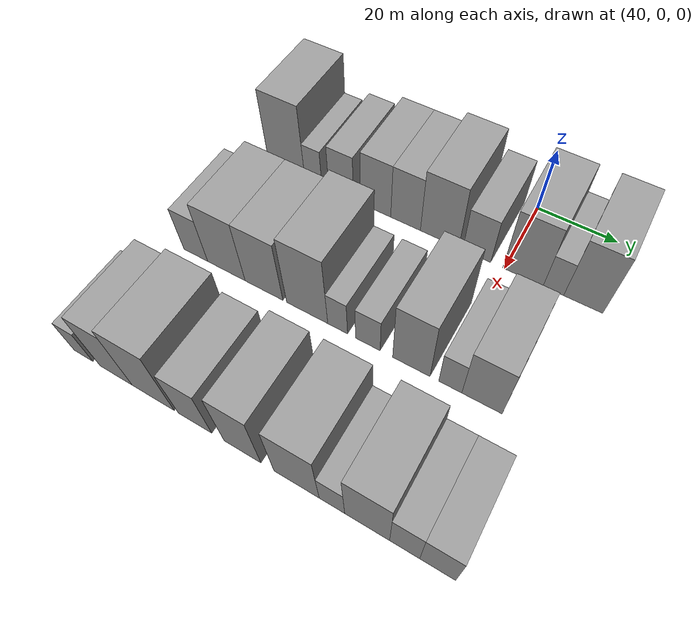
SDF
<sdf version="1.6">
 <world name="default">
  <model name="building_28">
   <static>1</static>
   <pose>50.0000 -59.4083 0 0.000000 0.000000 0.000000</pose>
   <link name="link">
    <pose>0 0 12.00 0 0 0</pose>
    <collision name="collision"><geometry><box><size>20.0000 10.8546 24.0000</size></box></geometry></collision>
    <visual name="visual">
     <cast_shadows>0</cast_shadows>
     <geometry><box><size>20.0000 10.8546 24.0000</size></box></geometry>
     <material>
      <script>
       <uri>model://grey_wall/materials/scripts</uri>
       <uri>model://grey_wall/materials/textures</uri>
       <name>vrc/grey_wall</name>
      </script>
     </material>
    </visual>
   </link>
  </model>
  <model name="building_29">
   <static>1</static>
   <pose>50.0000 -51.4689 0 0.000000 0.000000 0.000000</pose>
   <link name="link">
    <pose>0 0 6.00 0 0 0</pose>
    <collision name="collision"><geometry><box><size>20.0000 5.0243 12.0000</size></box></geometry></collision>
    <visual name="visual">
     <cast_shadows>0</cast_shadows>
     <geometry><box><size>20.0000 5.0243 12.0000</size></box></geometry>
     <material>
      <script>
       <uri>model://grey_wall/materials/scripts</uri>
       <uri>model://grey_wall/materials/textures</uri>
       <name>vrc/grey_wall</name>
      </script>
     </material>
    </visual>
   </link>
  </model>
  <model name="building_30">
   <static>1</static>
   <pose>50.0000 -43.4374 0 0.000000 0.000000 0.000000</pose>
   <link name="link">
    <pose>0 0 7.50 0 0 0</pose>
    <collision name="collision"><geometry><box><size>20.0000 7.0387 15.0000</size></box></geometry></collision>
    <visual name="visual">
     <cast_shadows>0</cast_shadows>
     <geometry><box><size>20.0000 7.0387 15.0000</size></box></geometry>
     <material>
      <script>
       <uri>model://grey_wall/materials/scripts</uri>
       <uri>model://grey_wall/materials/textures</uri>
       <name>vrc/grey_wall</name>
      </script>
     </material>
    </visual>
   </link>
  </model>
  <model name="building_31">
   <static>1</static>
   <pose>50.0000 -33.7445 0 0.000000 0.000000 0.000000</pose>
   <link name="link">
    <pose>0 0 9.00 0 0 0</pose>
    <collision name="collision"><geometry><box><size>20.0000 8.3470 18.0000</size></box></geometry></collision>
    <visual name="visual">
     <cast_shadows>0</cast_shadows>
     <geometry><box><size>20.0000 8.3470 18.0000</size></box></geometry>
     <material>
      <script>
       <uri>model://grey_wall/materials/scripts</uri>
       <uri>model://grey_wall/materials/textures</uri>
       <name>vrc/grey_wall</name>
      </script>
     </material>
    </visual>
   </link>
  </model>
  <model name="building_32">
   <static>1</static>
   <pose>50.0000 -25.5704 0 0.000000 0.000000 0.000000</pose>
   <link name="link">
    <pose>0 0 9.00 0 0 0</pose>
    <collision name="collision"><geometry><box><size>20.0000 8.0010 18.0000</size></box></geometry></collision>
    <visual name="visual">
     <cast_shadows>0</cast_shadows>
     <geometry><box><size>20.0000 8.0010 18.0000</size></box></geometry>
     <material>
      <script>
       <uri>model://grey_wall/materials/scripts</uri>
       <uri>model://grey_wall/materials/textures</uri>
       <name>vrc/grey_wall</name>
      </script>
     </material>
    </visual>
   </link>
  </model>
  <model name="building_33">
   <static>1</static>
   <pose>50.0000 -16.5483 0 0.000000 0.000000 0.000000</pose>
   <link name="link">
    <pose>0 0 10.50 0 0 0</pose>
    <collision name="collision"><geometry><box><size>20.0000 10.0432 21.0000</size></box></geometry></collision>
    <visual name="visual">
     <cast_shadows>0</cast_shadows>
     <geometry><box><size>20.0000 10.0432 21.0000</size></box></geometry>
     <material>
      <script>
       <uri>model://grey_wall/materials/scripts</uri>
       <uri>model://grey_wall/materials/textures</uri>
       <name>vrc/grey_wall</name>
      </script>
     </material>
    </visual>
   </link>
  </model>
  <model name="building_34">
   <static>1</static>
   <pose>50.0000 -6.9915 0 0.000000 0.000000 0.000000</pose>
   <link name="link">
    <pose>0 0 7.50 0 0 0</pose>
    <collision name="collision"><geometry><box><size>20.0000 7.0704 15.0000</size></box></geometry></collision>
    <visual name="visual">
     <cast_shadows>0</cast_shadows>
     <geometry><box><size>20.0000 7.0704 15.0000</size></box></geometry>
     <material>
      <script>
       <uri>model://grey_wall/materials/scripts</uri>
       <uri>model://grey_wall/materials/textures</uri>
       <name>vrc/grey_wall</name>
      </script>
     </material>
    </visual>
   </link>
  </model>
  <model name="building_35">
   <static>1</static>
   <pose>50.0000 4.4406 0 0.000000 0.000000 0.000000</pose>
   <link name="link">
    <pose>0 0 10.50 0 0 0</pose>
    <collision name="collision"><geometry><box><size>20.0000 9.7938 21.0000</size></box></geometry></collision>
    <visual name="visual">
     <cast_shadows>0</cast_shadows>
     <geometry><box><size>20.0000 9.7938 21.0000</size></box></geometry>
     <material>
      <script>
       <uri>model://grey_wall/materials/scripts</uri>
       <uri>model://grey_wall/materials/textures</uri>
       <name>vrc/grey_wall</name>
      </script>
     </material>
    </visual>
   </link>
  </model>
  <model name="building_36">
   <static>1</static>
   <pose>50.0000 11.7586 0 0.000000 0.000000 0.000000</pose>
   <link name="link">
    <pose>0 0 6.00 0 0 0</pose>
    <collision name="collision"><geometry><box><size>20.0000 4.8423 12.0000</size></box></geometry></collision>
    <visual name="visual">
     <cast_shadows>0</cast_shadows>
     <geometry><box><size>20.0000 4.8423 12.0000</size></box></geometry>
     <material>
      <script>
       <uri>model://grey_wall/materials/scripts</uri>
       <uri>model://grey_wall/materials/textures</uri>
       <name>vrc/grey_wall</name>
      </script>
     </material>
    </visual>
   </link>
  </model>
  <model name="building_37">
   <static>1</static>
   <pose>50.0000 18.6964 0 0.000000 0.000000 0.000000</pose>
   <link name="link">
    <pose>0 0 10.50 0 0 0</pose>
    <collision name="collision"><geometry><box><size>20.0000 9.0333 21.0000</size></box></geometry></collision>
    <visual name="visual">
     <cast_shadows>0</cast_shadows>
     <geometry><box><size>20.0000 9.0333 21.0000</size></box></geometry>
     <material>
      <script>
       <uri>model://grey_wall/materials/scripts</uri>
       <uri>model://grey_wall/materials/textures</uri>
       <name>vrc/grey_wall</name>
      </script>
     </material>
    </visual>
   </link>
  </model>
  <model name="building_98">
   <static>1</static>
   <pose>82.0000 -63.2266 0 0.000000 0.000000 0.000000</pose>
   <link name="link">
    <pose>0 0 7.50 0 0 0</pose>
    <collision name="collision"><geometry><box><size>20.0000 6.8529 15.0000</size></box></geometry></collision>
    <visual name="visual">
     <cast_shadows>0</cast_shadows>
     <geometry><box><size>20.0000 6.8529 15.0000</size></box></geometry>
     <material>
      <script>
       <uri>model://grey_wall/materials/scripts</uri>
       <uri>model://grey_wall/materials/textures</uri>
       <name>vrc/grey_wall</name>
      </script>
     </material>
    </visual>
   </link>
  </model>
  <model name="building_99">
   <static>1</static>
   <pose>82.0000 -54.5525 0 0.000000 0.000000 0.000000</pose>
   <link name="link">
    <pose>0 0 10.50 0 0 0</pose>
    <collision name="collision"><geometry><box><size>20.0000 10.4952 21.0000</size></box></geometry></collision>
    <visual name="visual">
     <cast_shadows>0</cast_shadows>
     <geometry><box><size>20.0000 10.4952 21.0000</size></box></geometry>
     <material>
      <script>
       <uri>model://grey_wall/materials/scripts</uri>
       <uri>model://grey_wall/materials/textures</uri>
       <name>vrc/grey_wall</name>
      </script>
     </material>
    </visual>
   </link>
  </model>
  <model name="building_100">
   <static>1</static>
   <pose>82.0000 -44.2091 0 0.000000 0.000000 0.000000</pose>
   <link name="link">
    <pose>0 0 10.50 0 0 0</pose>
    <collision name="collision"><geometry><box><size>20.0000 10.1915 21.0000</size></box></geometry></collision>
    <visual name="visual">
     <cast_shadows>0</cast_shadows>
     <geometry><box><size>20.0000 10.1915 21.0000</size></box></geometry>
     <material>
      <script>
       <uri>model://grey_wall/materials/scripts</uri>
       <uri>model://grey_wall/materials/textures</uri>
       <name>vrc/grey_wall</name>
      </script>
     </material>
    </visual>
   </link>
  </model>
  <model name="building_101">
   <static>1</static>
   <pose>82.0000 -32.7987 0 0.000000 0.000000 0.000000</pose>
   <link name="link">
    <pose>0 0 12.00 0 0 0</pose>
    <collision name="collision"><geometry><box><size>20.0000 10.6295 24.0000</size></box></geometry></collision>
    <visual name="visual">
     <cast_shadows>0</cast_shadows>
     <geometry><box><size>20.0000 10.6295 24.0000</size></box></geometry>
     <material>
      <script>
       <uri>model://grey_wall/materials/scripts</uri>
       <uri>model://grey_wall/materials/textures</uri>
       <name>vrc/grey_wall</name>
      </script>
     </material>
    </visual>
   </link>
  </model>
  <model name="building_102">
   <static>1</static>
   <pose>82.0000 -24.9941 0 0.000000 0.000000 0.000000</pose>
   <link name="link">
    <pose>0 0 6.00 0 0 0</pose>
    <collision name="collision"><geometry><box><size>20.0000 4.9796 12.0000</size></box></geometry></collision>
    <visual name="visual">
     <cast_shadows>0</cast_shadows>
     <geometry><box><size>20.0000 4.9796 12.0000</size></box></geometry>
     <material>
      <script>
       <uri>model://grey_wall/materials/scripts</uri>
       <uri>model://grey_wall/materials/textures</uri>
       <name>vrc/grey_wall</name>
      </script>
     </material>
    </visual>
   </link>
  </model>
  <model name="building_103">
   <static>1</static>
   <pose>82.0000 -17.5115 0 0.000000 0.000000 0.000000</pose>
   <link name="link">
    <pose>0 0 6.00 0 0 0</pose>
    <collision name="collision"><geometry><box><size>20.0000 5.9856 12.0000</size></box></geometry></collision>
    <visual name="visual">
     <cast_shadows>0</cast_shadows>
     <geometry><box><size>20.0000 5.9856 12.0000</size></box></geometry>
     <material>
      <script>
       <uri>model://grey_wall/materials/scripts</uri>
       <uri>model://grey_wall/materials/textures</uri>
       <name>vrc/grey_wall</name>
      </script>
     </material>
    </visual>
   </link>
  </model>
  <model name="building_104">
   <static>1</static>
   <pose>82.0000 -7.1306 0 0.000000 0.000000 0.000000</pose>
   <link name="link">
    <pose>0 0 10.50 0 0 0</pose>
    <collision name="collision"><geometry><box><size>20.0000 8.7762 21.0000</size></box></geometry></collision>
    <visual name="visual">
     <cast_shadows>0</cast_shadows>
     <geometry><box><size>20.0000 8.7762 21.0000</size></box></geometry>
     <material>
      <script>
       <uri>model://grey_wall/materials/scripts</uri>
       <uri>model://grey_wall/materials/textures</uri>
       <name>vrc/grey_wall</name>
      </script>
     </material>
    </visual>
   </link>
  </model>
  <model name="building_105">
   <static>1</static>
   <pose>82.0000 1.8688 0 0.000000 0.000000 0.000000</pose>
   <link name="link">
    <pose>0 0 6.00 0 0 0</pose>
    <collision name="collision"><geometry><box><size>20.0000 5.2227 12.0000</size></box></geometry></collision>
    <visual name="visual">
     <cast_shadows>0</cast_shadows>
     <geometry><box><size>20.0000 5.2227 12.0000</size></box></geometry>
     <material>
      <script>
       <uri>model://grey_wall/materials/scripts</uri>
       <uri>model://grey_wall/materials/textures</uri>
       <name>vrc/grey_wall</name>
      </script>
     </material>
    </visual>
   </link>
  </model>
  <model name="building_106">
   <static>1</static>
   <pose>82.0000 8.9298 0 0.000000 0.000000 0.000000</pose>
   <link name="link">
    <pose>0 0 9.00 0 0 0</pose>
    <collision name="collision"><geometry><box><size>20.0000 8.8992 18.0000</size></box></geometry></collision>
    <visual name="visual">
     <cast_shadows>0</cast_shadows>
     <geometry><box><size>20.0000 8.8992 18.0000</size></box></geometry>
     <material>
      <script>
       <uri>model://grey_wall/materials/scripts</uri>
       <uri>model://grey_wall/materials/textures</uri>
       <name>vrc/grey_wall</name>
      </script>
     </material>
    </visual>
   </link>
  </model>
  <model name="building_178">
   <static>1</static>
   <pose>114.0000 -67.9036 0 0.000000 0.000000 0.000000</pose>
   <link name="link">
    <pose>0 0 6.00 0 0 0</pose>
    <collision name="collision"><geometry><box><size>20.0000 5.1914 12.0000</size></box></geometry></collision>
    <visual name="visual">
     <cast_shadows>0</cast_shadows>
     <geometry><box><size>20.0000 5.1914 12.0000</size></box></geometry>
     <material>
      <script>
       <uri>model://grey_wall/materials/scripts</uri>
       <uri>model://grey_wall/materials/textures</uri>
       <name>vrc/grey_wall</name>
      </script>
     </material>
    </visual>
   </link>
  </model>
  <model name="building_179">
   <static>1</static>
   <pose>114.0000 -58.9770 0 0.000000 0.000000 0.000000</pose>
   <link name="link">
    <pose>0 0 10.50 0 0 0</pose>
    <collision name="collision"><geometry><box><size>20.0000 8.6619 21.0000</size></box></geometry></collision>
    <visual name="visual">
     <cast_shadows>0</cast_shadows>
     <geometry><box><size>20.0000 8.6619 21.0000</size></box></geometry>
     <material>
      <script>
       <uri>model://grey_wall/materials/scripts</uri>
       <uri>model://grey_wall/materials/textures</uri>
       <name>vrc/grey_wall</name>
      </script>
     </material>
    </visual>
   </link>
  </model>
  <model name="building_180">
   <static>1</static>
   <pose>114.0000 -49.2096 0 0.000000 0.000000 0.000000</pose>
   <link name="link">
    <pose>0 0 12.00 0 0 0</pose>
    <collision name="collision"><geometry><box><size>20.0000 10.8729 24.0000</size></box></geometry></collision>
    <visual name="visual">
     <cast_shadows>0</cast_shadows>
     <geometry><box><size>20.0000 10.8729 24.0000</size></box></geometry>
     <material>
      <script>
       <uri>model://grey_wall/materials/scripts</uri>
       <uri>model://grey_wall/materials/textures</uri>
       <name>vrc/grey_wall</name>
      </script>
     </material>
    </visual>
   </link>
  </model>
  <model name="building_181">
   <static>1</static>
   <pose>114.0000 -38.6105 0 0.000000 0.000000 0.000000</pose>
   <link name="link">
    <pose>0 0 9.00 0 0 0</pose>
    <collision name="collision"><geometry><box><size>20.0000 8.3252 18.0000</size></box></geometry></collision>
    <visual name="visual">
     <cast_shadows>0</cast_shadows>
     <geometry><box><size>20.0000 8.3252 18.0000</size></box></geometry>
     <material>
      <script>
       <uri>model://grey_wall/materials/scripts</uri>
       <uri>model://grey_wall/materials/textures</uri>
       <name>vrc/grey_wall</name>
      </script>
     </material>
    </visual>
   </link>
  </model>
  <model name="building_182">
   <static>1</static>
   <pose>114.0000 -27.0891 0 0.000000 0.000000 0.000000</pose>
   <link name="link">
    <pose>0 0 10.50 0 0 0</pose>
    <collision name="collision"><geometry><box><size>20.0000 8.7176 21.0000</size></box></geometry></collision>
    <visual name="visual">
     <cast_shadows>0</cast_shadows>
     <geometry><box><size>20.0000 8.7176 21.0000</size></box></geometry>
     <material>
      <script>
       <uri>model://grey_wall/materials/scripts</uri>
       <uri>model://grey_wall/materials/textures</uri>
       <name>vrc/grey_wall</name>
      </script>
     </material>
    </visual>
   </link>
  </model>
  <model name="building_183">
   <static>1</static>
   <pose>114.0000 -14.6523 0 0.000000 0.000000 0.000000</pose>
   <link name="link">
    <pose>0 0 10.50 0 0 0</pose>
    <collision name="collision"><geometry><box><size>20.0000 10.1561 21.0000</size></box></geometry></collision>
    <visual name="visual">
     <cast_shadows>0</cast_shadows>
     <geometry><box><size>20.0000 10.1561 21.0000</size></box></geometry>
     <material>
      <script>
       <uri>model://grey_wall/materials/scripts</uri>
       <uri>model://grey_wall/materials/textures</uri>
       <name>vrc/grey_wall</name>
      </script>
     </material>
    </visual>
   </link>
  </model>
  <model name="building_184">
   <static>1</static>
   <pose>114.0000 -6.8064 0 0.000000 0.000000 0.000000</pose>
   <link name="link">
    <pose>0 0 6.00 0 0 0</pose>
    <collision name="collision"><geometry><box><size>20.0000 5.5355 12.0000</size></box></geometry></collision>
    <visual name="visual">
     <cast_shadows>0</cast_shadows>
     <geometry><box><size>20.0000 5.5355 12.0000</size></box></geometry>
     <material>
      <script>
       <uri>model://grey_wall/materials/scripts</uri>
       <uri>model://grey_wall/materials/textures</uri>
       <name>vrc/grey_wall</name>
      </script>
     </material>
    </visual>
   </link>
  </model>
  <model name="building_185">
   <static>1</static>
   <pose>114.0000 0.6657 0 0.000000 0.000000 0.000000</pose>
   <link name="link">
    <pose>0 0 10.50 0 0 0</pose>
    <collision name="collision"><geometry><box><size>20.0000 9.4088 21.0000</size></box></geometry></collision>
    <visual name="visual">
     <cast_shadows>0</cast_shadows>
     <geometry><box><size>20.0000 9.4088 21.0000</size></box></geometry>
     <material>
      <script>
       <uri>model://grey_wall/materials/scripts</uri>
       <uri>model://grey_wall/materials/textures</uri>
       <name>vrc/grey_wall</name>
      </script>
     </material>
    </visual>
   </link>
  </model>
  <model name="building_186">
   <static>1</static>
   <pose>114.0000 8.4265 0 0.000000 0.000000 0.000000</pose>
   <link name="link">
    <pose>0 0 7.50 0 0 0</pose>
    <collision name="collision"><geometry><box><size>20.0000 6.1127 15.0000</size></box></geometry></collision>
    <visual name="visual">
     <cast_shadows>0</cast_shadows>
     <geometry><box><size>20.0000 6.1127 15.0000</size></box></geometry>
     <material>
      <script>
       <uri>model://grey_wall/materials/scripts</uri>
       <uri>model://grey_wall/materials/textures</uri>
       <name>vrc/grey_wall</name>
      </script>
     </material>
    </visual>
   </link>
  </model>
  <model name="building_187">
   <static>1</static>
   <pose>114.0000 15.0173 0 0.000000 0.000000 0.000000</pose>
   <link name="link">
    <pose>0 0 7.50 0 0 0</pose>
    <collision name="collision"><geometry><box><size>20.0000 7.0689 15.0000</size></box></geometry></collision>
    <visual name="visual">
     <cast_shadows>0</cast_shadows>
     <geometry><box><size>20.0000 7.0689 15.0000</size></box></geometry>
     <material>
      <script>
       <uri>model://grey_wall/materials/scripts</uri>
       <uri>model://grey_wall/materials/textures</uri>
       <name>vrc/grey_wall</name>
      </script>
     </material>
    </visual>
   </link>
  </model>
 </world>
</sdf>
